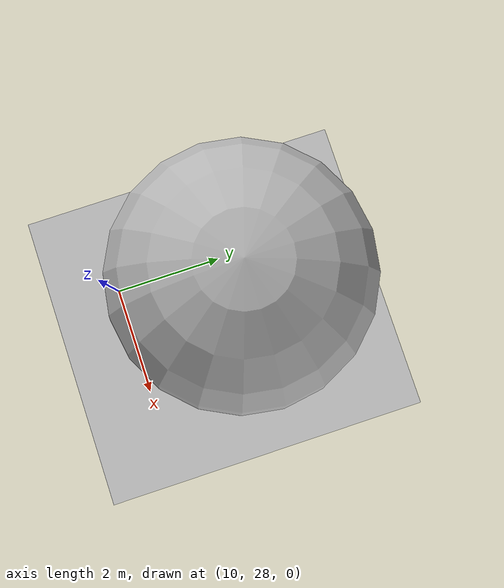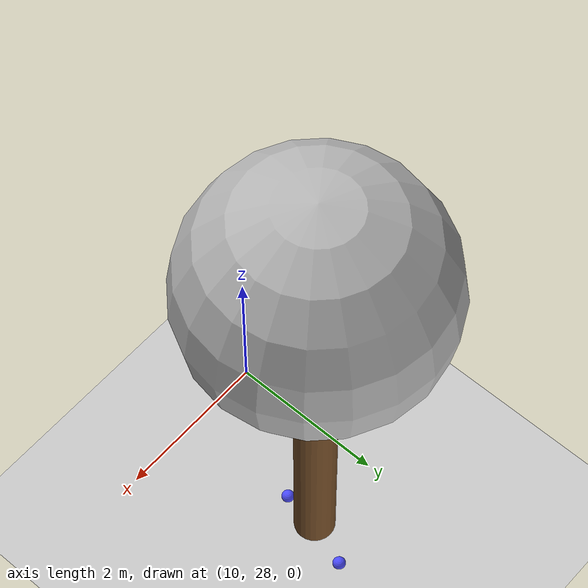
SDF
<sdf version="1.7">
 <world name="default">
  <model name="ground_plane">
   <static>1</static>
   <link name="link">
    <collision name="collision">
     <geometry><plane><normal>0 0 1</normal><size>100 100</size></plane></geometry>
     <surface>
      <contact><collide_bitmask>65535</collide_bitmask></contact>
      <friction><ode><mu>100</mu><mu2>50</mu2></ode></friction>
     </surface>
    </collision>
    <visual name="visual">
     <cast_shadows>0</cast_shadows>
     <geometry><plane><normal>0 0 1</normal><size>100 100</size></plane></geometry>
     <material>
      <script><uri>file://media/materials/scripts/gazebo.material</uri><name>Gazebo/Grey</name></script>
     </material>
    </visual>
   </link>
  </model>
  <model name="tree_simple_28">
   <static>1</static>
   <link name="link">
    <pose>0 0 0.1 0 -0 0</pose>
    <inertial>
     <mass>666</mass>
     <inertia>
      <ixx>0.0861167</ixx>
      <ixy>0</ixy>
      <ixz>0</ixz>
      <iyy>0.0861167</iyy>
      <iyz>0</iyz>
      <izz>0.0861167</izz>
     </inertia>
    </inertial>
    <collision name="collision_trunk">
     <pose>0 0 2 0 -0 0</pose>
     <geometry><cylinder><radius>0.25</radius><length>4</length></cylinder></geometry>
     <surface>
      <contact>
       <poissons_ratio>0.347</poissons_ratio>
       <elastic_modulus>8.8e+09</elastic_modulus>
       <ode><kp>100000</kp><kd>100</kd><max_vel>100</max_vel><min_depth>0.001</min_depth></ode>
      </contact>
      <friction>
       <torsional>
        <coefficient>1</coefficient>
        <use_patch_radius>0</use_patch_radius>
        <surface_radius>0.01</surface_radius>
       </torsional>
      </friction>
     </surface>
    </collision>
    <collision name="collision_treetop">
     <pose>0 0 5.2 0 -0 0</pose>
     <geometry><sphere><radius>1.5</radius></sphere></geometry>
     <surface>
      <contact>
       <poissons_ratio>0.347</poissons_ratio>
       <elastic_modulus>8.8e+09</elastic_modulus>
       <ode><kp>100000</kp><kd>100</kd><max_vel>100</max_vel><min_depth>0.001</min_depth></ode>
      </contact>
      <friction>
       <torsional>
        <coefficient>1</coefficient>
        <use_patch_radius>0</use_patch_radius>
        <surface_radius>0.01</surface_radius>
       </torsional>
      </friction>
     </surface>
    </collision>
    <visual name="trunk">
     <pose>0 0 2 0 -0 0</pose>
     <geometry><cylinder><radius>0.25</radius><length>4</length></cylinder></geometry>
     <material>
      <script>
       <uri>model://tree_simple/scripts</uri>
       <uri>model://tree_simple/materials/textures</uri>
       <name>TreeSimple/Trunk</name>
      </script>
     </material>
    </visual>
    <visual name="treetop">
     <pose>0 0 5.2 0 -0 0</pose>
     <geometry><sphere><radius>1.5</radius></sphere></geometry>
     <material>
      <script>
       <uri>model://tree_simple/scripts</uri>
       <uri>model://tree_simple/materials/textures</uri>
       <name>TreeSimple/Treetop</name>
      </script>
     </material>
    </visual>
   </link>
   <pose>11 30 -0.1 0 -0 0</pose>
  </model>
  <model name="seed_blue_56">
   <link name="link">
    <inertial>
     <mass>1</mass>
     <inertia><ixx>0.1</ixx><ixy>0</ixy><ixz>0</ixz><iyy>0.1</iyy><iyz>0</iyz><izz>0.1</izz></inertia>
    </inertial>
    <visual name="visual">
     <geometry><sphere><radius>0.08</radius></sphere></geometry>
     <material>
      <script><name>Gazebo/Grey</name><uri>file://media/materials/scripts/gazebo.material</uri></script>
      <shader type="pixel"><normal_map>__default__</normal_map></shader>
      <ambient>0.3 0.3 1 1</ambient>
      <diffuse>0.7 0.7 0.7 1</diffuse>
      <specular>0.01 0.01 0.01 1</specular>
      <emissive>0 0 0 1</emissive>
     </material>
    </visual>
    <collision name="collision">
     <geometry><sphere><radius>0.0005</radius></sphere></geometry>
     <surface>
      <friction>
       <ode><mu>1</mu><mu2>1</mu2><fdir1>0 0 0</fdir1><slip1>0</slip1><slip2>0</slip2></ode>
       <torsional>
        <coefficient>1</coefficient>
        <patch_radius>0</patch_radius>
        <surface_radius>0</surface_radius>
        <use_patch_radius>1</use_patch_radius>
        <ode><slip>0</slip></ode>
       </torsional>
      </friction>
      <bounce><restitution_coefficient>0</restitution_coefficient><threshold>1e+06</threshold></bounce>
      <contact>
       <collide_without_contact>0</collide_without_contact>
       <collide_without_contact_bitmask>1</collide_without_contact_bitmask>
       <collide_bitmask>1</collide_bitmask>
       <ode>
        <soft_cfm>0</soft_cfm>
        <soft_erp>0.2</soft_erp>
        <kp>1e+13</kp>
        <kd>1</kd>
        <max_vel>0.01</max_vel>
        <min_depth>0</min_depth>
       </ode>
       <bullet>
        <split_impulse>1</split_impulse>
        <split_impulse_penetration_threshold>-0.01</split_impulse_penetration_threshold>
        <soft_cfm>0</soft_cfm>
        <soft_erp>0.2</soft_erp>
        <kp>1e+13</kp>
        <kd>1</kd>
       </bullet>
      </contact>
     </surface>
    </collision>
   </link>
   <static>0</static>
   <pose>11.2169 30.5734 0.0005 0 -0 0</pose>
  </model>
  <model name="seed_blue_63">
   <link name="link">
    <inertial>
     <mass>1</mass>
     <inertia><ixx>0.1</ixx><ixy>0</ixy><ixz>0</ixz><iyy>0.1</iyy><iyz>0</iyz><izz>0.1</izz></inertia>
    </inertial>
    <visual name="visual">
     <geometry><sphere><radius>0.08</radius></sphere></geometry>
     <material>
      <script><name>Gazebo/Grey</name><uri>file://media/materials/scripts/gazebo.material</uri></script>
      <shader type="pixel"><normal_map>__default__</normal_map></shader>
      <ambient>0.3 0.3 1 1</ambient>
      <diffuse>0.7 0.7 0.7 1</diffuse>
      <specular>0.01 0.01 0.01 1</specular>
      <emissive>0 0 0 1</emissive>
     </material>
    </visual>
    <collision name="collision">
     <geometry><sphere><radius>0.0005</radius></sphere></geometry>
     <surface>
      <friction>
       <ode><mu>1</mu><mu2>1</mu2><fdir1>0 0 0</fdir1><slip1>0</slip1><slip2>0</slip2></ode>
       <torsional>
        <coefficient>1</coefficient>
        <patch_radius>0</patch_radius>
        <surface_radius>0</surface_radius>
        <use_patch_radius>1</use_patch_radius>
        <ode><slip>0</slip></ode>
       </torsional>
      </friction>
      <bounce><restitution_coefficient>0</restitution_coefficient><threshold>1e+06</threshold></bounce>
      <contact>
       <collide_without_contact>0</collide_without_contact>
       <collide_without_contact_bitmask>1</collide_without_contact_bitmask>
       <collide_bitmask>1</collide_bitmask>
       <ode>
        <soft_cfm>0</soft_cfm>
        <soft_erp>0.2</soft_erp>
        <kp>1e+13</kp>
        <kd>1</kd>
        <max_vel>0.01</max_vel>
        <min_depth>0</min_depth>
       </ode>
       <bullet>
        <split_impulse>1</split_impulse>
        <split_impulse_penetration_threshold>-0.01</split_impulse_penetration_threshold>
        <soft_cfm>0</soft_cfm>
        <soft_erp>0.2</soft_erp>
        <kp>1e+13</kp>
        <kd>1</kd>
       </bullet>
      </contact>
     </surface>
    </collision>
   </link>
   <static>0</static>
   <pose>10.9522 29.533 0.0005 0 -0 0</pose>
  </model>
 </world>
</sdf>
